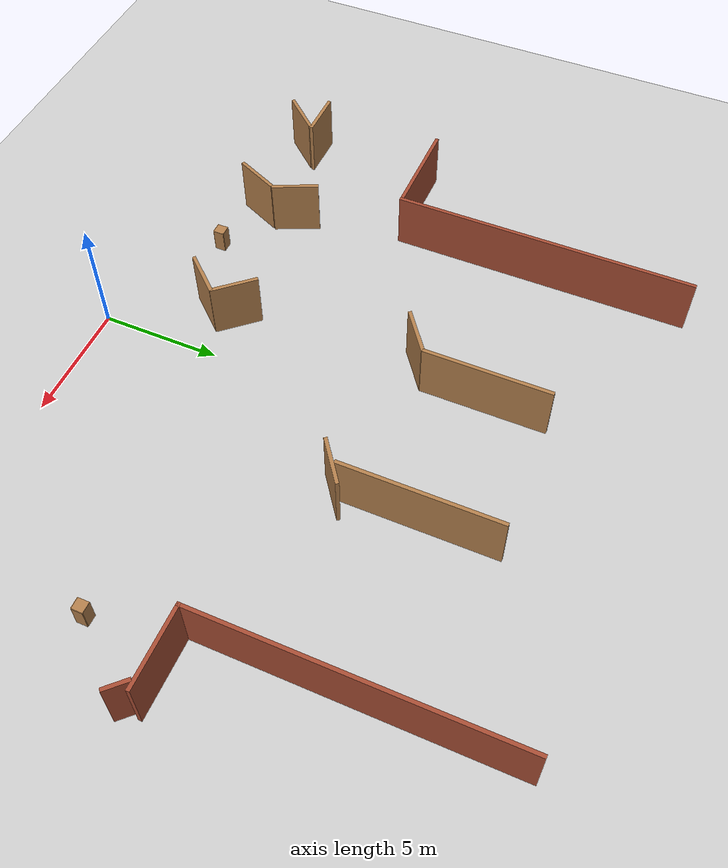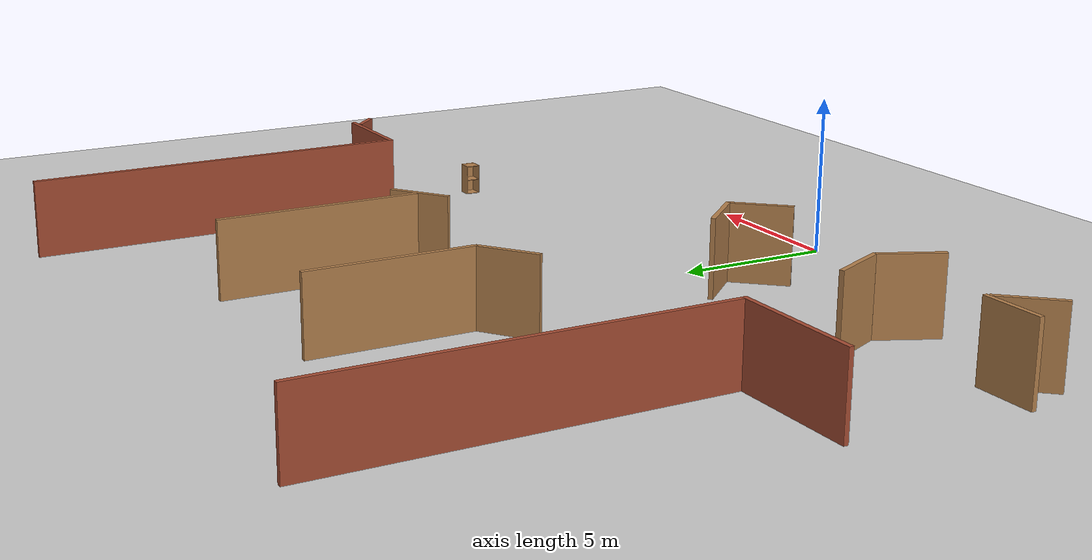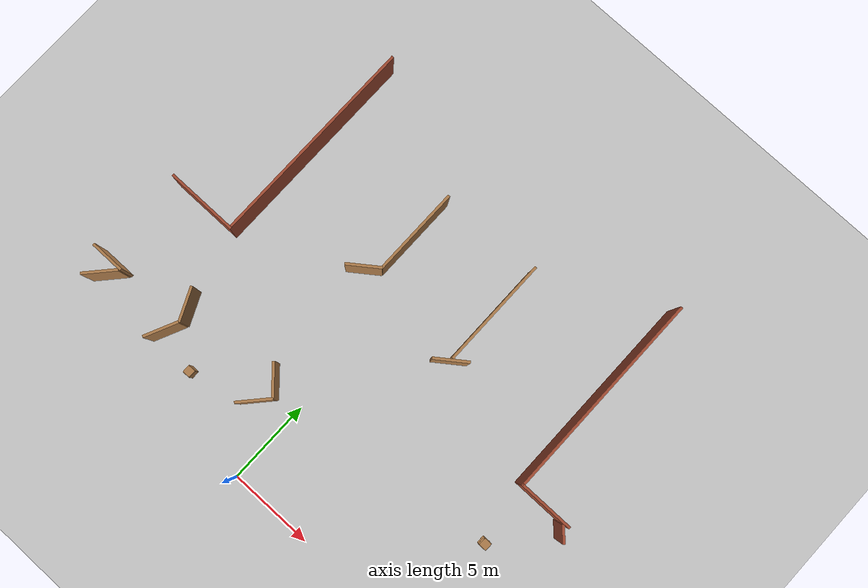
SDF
<sdf version="1.6">
 <world name="default">
  <model name="ground_plane">
   <static>1</static>
   <link name="link">
    <collision name="collision">
     <geometry><plane><normal>0 0 1</normal><size>100 100</size></plane></geometry>
     <surface><friction><ode><mu>100</mu><mu2>50</mu2></ode></friction></surface>
    </collision>
    <visual name="visual">
     <cast_shadows>0</cast_shadows>
     <geometry><plane><normal>0 0 1</normal><size>100 100</size></plane></geometry>
     <material>
      <script><uri>file://media/materials/scripts/gazebo.material</uri><name>Gazebo/Grey</name></script>
     </material>
    </visual>
   </link>
  </model>
  <model name="cabinet">
   <static>1</static>
   <link name="cabinet_bottom_plate">
    <inertial>
     <pose>0 0 -1 0 -0 0</pose>
     <inertia><ixx>2.05</ixx><ixy>0</ixy><ixz>0</ixz><iyy>2.05</iyy><iyz>0</iyz><izz>2.05</izz></inertia>
     <mass>25</mass>
    </inertial>
    <collision name="cabinet_bottom_plate_geom">
     <pose>0 0 0.01 0 -0 0</pose>
     <geometry><box><size>0.45 0.45 0.02</size></box></geometry>
    </collision>
    <visual name="cabinet_bottom_plate_geom_visual">
     <pose>0 0 0.01 0 -0 0</pose>
     <geometry><box><size>0.45 0.45 0.02</size></box></geometry>
     <material>
      <script><uri>file://media/materials/scripts/gazebo.material</uri><name>Gazebo/Wood</name></script>
     </material>
    </visual>
    <collision name="cabinet_bottom_plate_geom_cabinet_back_plate">
     <pose>0.235 0 0.51 0 -0 0</pose>
     <geometry><box><size>0.02 0.45 1.02</size></box></geometry>
    </collision>
    <visual name="cabinet_bottom_plate_geom_cabinet_back_plate_visual">
     <pose>0.235 0 0.51 0 -0 0</pose>
     <geometry><box><size>0.02 0.45 1.02</size></box></geometry>
     <material>
      <script><uri>file://media/materials/scripts/gazebo.material</uri><name>Gazebo/Wood</name></script>
     </material>
    </visual>
    <collision name="cabinet_bottom_plate_geom_cabinet_left_plate">
     <pose>0 0.235 0.51 0 -0 0</pose>
     <geometry><box><size>0.45 0.02 1.02</size></box></geometry>
    </collision>
    <visual name="cabinet_bottom_plate_geom_cabinet_left_plate_visual">
     <pose>0 0.235 0.51 0 -0 0</pose>
     <geometry><box><size>0.45 0.02 1.02</size></box></geometry>
     <material>
      <script><uri>file://media/materials/scripts/gazebo.material</uri><name>Gazebo/Wood</name></script>
     </material>
    </visual>
    <collision name="cabinet_bottom_plate_geom_cabinet_middle_plate">
     <pose>0 0 0.51 0 -0 0</pose>
     <geometry><box><size>0.45 0.45 0.02</size></box></geometry>
    </collision>
    <visual name="cabinet_bottom_plate_geom_cabinet_middle_plate_visual">
     <pose>0 0 0.51 0 -0 0</pose>
     <geometry><box><size>0.45 0.45 0.02</size></box></geometry>
     <material>
      <script><uri>file://media/materials/scripts/gazebo.material</uri><name>Gazebo/Wood</name></script>
     </material>
    </visual>
    <collision name="cabinet_bottom_plate_geom_cabinet_right_plate">
     <pose>0 -0.235 0.51 0 -0 0</pose>
     <geometry><box><size>0.45 0.02 1.02</size></box></geometry>
    </collision>
    <visual name="cabinet_bottom_plate_geom_cabinet_right_plate_visual">
     <pose>0 -0.235 0.51 0 -0 0</pose>
     <geometry><box><size>0.45 0.02 1.02</size></box></geometry>
     <material>
      <script><uri>file://media/materials/scripts/gazebo.material</uri><name>Gazebo/Wood</name></script>
     </material>
    </visual>
    <collision name="cabinet_bottom_plate_geom_cabinet_top_plate">
     <pose>0 0 1.01 0 -0 0</pose>
     <geometry><box><size>0.45 0.45 0.02</size></box></geometry>
    </collision>
    <visual name="cabinet_bottom_plate_geom_cabinet_top_plate_visual">
     <pose>0 0 1.01 0 -0 0</pose>
     <geometry><box><size>0.45 0.45 0.02</size></box></geometry>
     <material>
      <script><uri>file://media/materials/scripts/gazebo.material</uri><name>Gazebo/Wood</name></script>
     </material>
    </visual>
   </link>
   <pose>-5.64752 2.41185 0 0 -0 0</pose>
  </model>
  <model name="cabinet_2">
   <static>1</static>
   <link name="cabinet_bottom_plate">
    <inertial>
     <pose>0 0 -1 0 -0 0</pose>
     <inertia><ixx>2.05</ixx><ixy>0</ixy><ixz>0</ixz><iyy>2.05</iyy><iyz>0</iyz><izz>2.05</izz></inertia>
     <mass>25</mass>
    </inertial>
    <collision name="cabinet_bottom_plate_geom">
     <pose>0 0 0.01 0 -0 0</pose>
     <geometry><box><size>0.45 0.45 0.02</size></box></geometry>
    </collision>
    <visual name="cabinet_bottom_plate_geom_visual">
     <pose>0 0 0.01 0 -0 0</pose>
     <geometry><box><size>0.45 0.45 0.02</size></box></geometry>
     <material>
      <script><uri>file://media/materials/scripts/gazebo.material</uri><name>Gazebo/Wood</name></script>
     </material>
    </visual>
    <collision name="cabinet_bottom_plate_geom_cabinet_back_plate">
     <pose>0.235 0 0.51 0 -0 0</pose>
     <geometry><box><size>0.02 0.45 1.02</size></box></geometry>
    </collision>
    <visual name="cabinet_bottom_plate_geom_cabinet_back_plate_visual">
     <pose>0.235 0 0.51 0 -0 0</pose>
     <geometry><box><size>0.02 0.45 1.02</size></box></geometry>
     <material>
      <script><uri>file://media/materials/scripts/gazebo.material</uri><name>Gazebo/Wood</name></script>
     </material>
    </visual>
    <collision name="cabinet_bottom_plate_geom_cabinet_left_plate">
     <pose>0 0.235 0.51 0 -0 0</pose>
     <geometry><box><size>0.45 0.02 1.02</size></box></geometry>
    </collision>
    <visual name="cabinet_bottom_plate_geom_cabinet_left_plate_visual">
     <pose>0 0.235 0.51 0 -0 0</pose>
     <geometry><box><size>0.45 0.02 1.02</size></box></geometry>
     <material>
      <script><uri>file://media/materials/scripts/gazebo.material</uri><name>Gazebo/Wood</name></script>
     </material>
    </visual>
    <collision name="cabinet_bottom_plate_geom_cabinet_middle_plate">
     <pose>0 0 0.51 0 -0 0</pose>
     <geometry><box><size>0.45 0.45 0.02</size></box></geometry>
    </collision>
    <visual name="cabinet_bottom_plate_geom_cabinet_middle_plate_visual">
     <pose>0 0 0.51 0 -0 0</pose>
     <geometry><box><size>0.45 0.45 0.02</size></box></geometry>
     <material>
      <script><uri>file://media/materials/scripts/gazebo.material</uri><name>Gazebo/Wood</name></script>
     </material>
    </visual>
    <collision name="cabinet_bottom_plate_geom_cabinet_right_plate">
     <pose>0 -0.235 0.51 0 -0 0</pose>
     <geometry><box><size>0.45 0.02 1.02</size></box></geometry>
    </collision>
    <visual name="cabinet_bottom_plate_geom_cabinet_right_plate_visual">
     <pose>0 -0.235 0.51 0 -0 0</pose>
     <geometry><box><size>0.45 0.02 1.02</size></box></geometry>
     <material>
      <script><uri>file://media/materials/scripts/gazebo.material</uri><name>Gazebo/Wood</name></script>
     </material>
    </visual>
    <collision name="cabinet_bottom_plate_geom_cabinet_top_plate">
     <pose>0 0 1.01 0 -0 0</pose>
     <geometry><box><size>0.45 0.45 0.02</size></box></geometry>
    </collision>
    <visual name="cabinet_bottom_plate_geom_cabinet_top_plate_visual">
     <pose>0 0 1.01 0 -0 0</pose>
     <geometry><box><size>0.45 0.45 0.02</size></box></geometry>
     <material>
      <script><uri>file://media/materials/scripts/gazebo.material</uri><name>Gazebo/Wood</name></script>
     </material>
    </visual>
   </link>
   <pose>11.9831 6.41172 0 0 -0 0</pose>
  </model>
  <model name="test_maze">
   <link name="Wall_54">
    <pose>-12.0939 9.225 0 0 -0 0</pose>
    <visual name="Wall_54_Visual">
     <pose>0 0 1.25 0 -0 0</pose>
     <geometry><box><size>4.25 0.15 2.5</size></box></geometry>
     <material>
      <script><uri>file://media/materials/scripts/gazebo.material</uri><name>Gazebo/Bricks</name></script>
      <ambient>1 1 1 1</ambient>
      <shader type="pixel"/>
     </material>
     <meta><layer>0</layer></meta>
    </visual>
    <collision name="Wall_54_Collision">
     <pose>0 0 1.25 0 -0 0</pose>
     <geometry><box><size>4.25 0.15 2.5</size></box></geometry>
     <surface>
      <friction>
       <ode><mu>1</mu><mu2>1</mu2><fdir1>0 0 0</fdir1><slip1>0</slip1><slip2>0</slip2></ode>
       <torsional>
        <coefficient>1</coefficient>
        <patch_radius>0</patch_radius>
        <surface_radius>0</surface_radius>
        <use_patch_radius>1</use_patch_radius>
        <ode><slip>0</slip></ode>
       </torsional>
      </friction>
      <bounce><restitution_coefficient>0</restitution_coefficient><threshold>1e+06</threshold></bounce>
      <contact>
       <collide_without_contact>0</collide_without_contact>
       <collide_without_contact_bitmask>1</collide_without_contact_bitmask>
       <collide_bitmask>1</collide_bitmask>
       <ode>
        <soft_cfm>0</soft_cfm>
        <soft_erp>0.2</soft_erp>
        <kp>1e+13</kp>
        <kd>1</kd>
        <max_vel>0.01</max_vel>
        <min_depth>0</min_depth>
       </ode>
       <bullet>
        <split_impulse>1</split_impulse>
        <split_impulse_penetration_threshold>-0.01</split_impulse_penetration_threshold>
        <soft_cfm>0</soft_cfm>
        <soft_erp>0.2</soft_erp>
        <kp>1e+13</kp>
        <kd>1</kd>
       </bullet>
      </contact>
     </surface>
    </collision>
   </link>
   <link name="Wall_78">
    <pose>-10.0439 15.525 0 0 -0 1.5708</pose>
    <visual name="Wall_78_Visual">
     <pose>0 0 1.25 0 -0 0</pose>
     <geometry><box><size>12.75 0.15 2.5</size></box></geometry>
     <material>
      <script><uri>file://media/materials/scripts/gazebo.material</uri><name>Gazebo/Bricks</name></script>
      <ambient>1 1 1 1</ambient>
      <shader type="pixel"/>
     </material>
     <meta><layer>0</layer></meta>
    </visual>
    <collision name="Wall_78_Collision">
     <pose>0 0 1.25 0 -0 0</pose>
     <geometry><box><size>12.75 0.15 2.5</size></box></geometry>
     <surface>
      <friction>
       <ode><mu>1</mu><mu2>1</mu2><fdir1>0 0 0</fdir1><slip1>0</slip1><slip2>0</slip2></ode>
       <torsional>
        <coefficient>1</coefficient>
        <patch_radius>0</patch_radius>
        <surface_radius>0</surface_radius>
        <use_patch_radius>1</use_patch_radius>
        <ode><slip>0</slip></ode>
       </torsional>
      </friction>
      <bounce><restitution_coefficient>0</restitution_coefficient><threshold>1e+06</threshold></bounce>
      <contact>
       <collide_without_contact>0</collide_without_contact>
       <collide_without_contact_bitmask>1</collide_without_contact_bitmask>
       <collide_bitmask>1</collide_bitmask>
       <ode>
        <soft_cfm>0</soft_cfm>
        <soft_erp>0.2</soft_erp>
        <kp>1e+13</kp>
        <kd>1</kd>
        <max_vel>0.01</max_vel>
        <min_depth>0</min_depth>
       </ode>
       <bullet>
        <split_impulse>1</split_impulse>
        <split_impulse_penetration_threshold>-0.01</split_impulse_penetration_threshold>
        <soft_cfm>0</soft_cfm>
        <soft_erp>0.2</soft_erp>
        <kp>1e+13</kp>
        <kd>1</kd>
       </bullet>
      </contact>
     </surface>
    </collision>
   </link>
   <link name="Wall_88">
    <pose>10.2061 15.9 0 0 0 -1.5708</pose>
    <visual name="Wall_88_Visual">
     <pose>0 0 1.25 0 -0 0</pose>
     <geometry><box><size>12.5 0.15 2.5</size></box></geometry>
     <material>
      <script><uri>file://media/materials/scripts/gazebo.material</uri><name>Gazebo/Bricks</name></script>
      <ambient>1 1 1 1</ambient>
      <shader type="pixel"/>
     </material>
     <meta><layer>0</layer></meta>
    </visual>
    <collision name="Wall_88_Collision">
     <pose>0 0 1.25 0 -0 0</pose>
     <geometry><box><size>12.5 0.15 2.5</size></box></geometry>
     <surface>
      <friction>
       <ode><mu>1</mu><mu2>1</mu2><fdir1>0 0 0</fdir1><slip1>0</slip1><slip2>0</slip2></ode>
       <torsional>
        <coefficient>1</coefficient>
        <patch_radius>0</patch_radius>
        <surface_radius>0</surface_radius>
        <use_patch_radius>1</use_patch_radius>
        <ode><slip>0</slip></ode>
       </torsional>
      </friction>
      <bounce><restitution_coefficient>0</restitution_coefficient><threshold>1e+06</threshold></bounce>
      <contact>
       <collide_without_contact>0</collide_without_contact>
       <collide_without_contact_bitmask>1</collide_without_contact_bitmask>
       <collide_bitmask>1</collide_bitmask>
       <ode>
        <soft_cfm>0</soft_cfm>
        <soft_erp>0.2</soft_erp>
        <kp>1e+13</kp>
        <kd>1</kd>
        <max_vel>0.01</max_vel>
        <min_depth>0</min_depth>
       </ode>
       <bullet>
        <split_impulse>1</split_impulse>
        <split_impulse_penetration_threshold>-0.01</split_impulse_penetration_threshold>
        <soft_cfm>0</soft_cfm>
        <soft_erp>0.2</soft_erp>
        <kp>1e+13</kp>
        <kd>1</kd>
       </bullet>
      </contact>
     </surface>
    </collision>
   </link>
   <link name="Wall_89">
    <pose>11.7561 9.725 0 0 -0 0</pose>
    <visual name="Wall_89_Visual">
     <pose>0 0 1.25 0 -0 0</pose>
     <geometry><box><size>3.25 0.15 2.5</size></box></geometry>
     <material>
      <script><uri>file://media/materials/scripts/gazebo.material</uri><name>Gazebo/Bricks</name></script>
      <ambient>1 1 1 1</ambient>
      <shader type="pixel"/>
     </material>
     <meta><layer>0</layer></meta>
    </visual>
    <collision name="Wall_89_Collision">
     <pose>0 0 1.25 0 -0 0</pose>
     <geometry><box><size>3.25 0.15 2.5</size></box></geometry>
     <surface>
      <friction>
       <ode><mu>1</mu><mu2>1</mu2><fdir1>0 0 0</fdir1><slip1>0</slip1><slip2>0</slip2></ode>
       <torsional>
        <coefficient>1</coefficient>
        <patch_radius>0</patch_radius>
        <surface_radius>0</surface_radius>
        <use_patch_radius>1</use_patch_radius>
        <ode><slip>0</slip></ode>
       </torsional>
      </friction>
      <bounce><restitution_coefficient>0</restitution_coefficient><threshold>1e+06</threshold></bounce>
      <contact>
       <collide_without_contact>0</collide_without_contact>
       <collide_without_contact_bitmask>1</collide_without_contact_bitmask>
       <collide_bitmask>1</collide_bitmask>
       <ode>
        <soft_cfm>0</soft_cfm>
        <soft_erp>0.2</soft_erp>
        <kp>1e+13</kp>
        <kd>1</kd>
        <max_vel>0.01</max_vel>
        <min_depth>0</min_depth>
       </ode>
       <bullet>
        <split_impulse>1</split_impulse>
        <split_impulse_penetration_threshold>-0.01</split_impulse_penetration_threshold>
        <soft_cfm>0</soft_cfm>
        <soft_erp>0.2</soft_erp>
        <kp>1e+13</kp>
        <kd>1</kd>
       </bullet>
      </contact>
     </surface>
    </collision>
   </link>
   <link name="Wall_90_clone">
    <pose>13.3429 9.27752 0 0 0 -0.8</pose>
    <inertial>
     <mass>1</mass>
     <inertia><ixx>1</ixx><ixy>0</ixy><ixz>0</ixz><iyy>1</iyy><iyz>0</iyz><izz>1</izz></inertia>
    </inertial>
    <visual name="Wall_90_Visual">
     <pose>0 0 1.25 0 -0 0</pose>
     <geometry><box><size>1 0.15 2.5</size></box></geometry>
     <material>
      <script><uri>file://media/materials/scripts/gazebo.material</uri><name>Gazebo/Bricks</name></script>
      <ambient>1 1 1 1</ambient>
      <shader type="pixel"><normal_map>__default__</normal_map></shader>
      <diffuse>1 1 1 1</diffuse>
      <specular>0.2 0.2 0.2 1</specular>
      <emissive>0 0 0 1</emissive>
     </material>
     <meta><layer>0</layer></meta>
    </visual>
    <collision name="Wall_90_Collision">
     <pose>0 0 1.25 0 -0 0</pose>
     <geometry><box><size>1 0.15 2.5</size></box></geometry>
     <surface>
      <friction>
       <ode><mu>1</mu><mu2>1</mu2><fdir1>0 0 0</fdir1><slip1>0</slip1><slip2>0</slip2></ode>
       <torsional>
        <coefficient>1</coefficient>
        <patch_radius>0</patch_radius>
        <surface_radius>0</surface_radius>
        <use_patch_radius>1</use_patch_radius>
        <ode><slip>0</slip></ode>
       </torsional>
      </friction>
      <bounce><restitution_coefficient>0</restitution_coefficient><threshold>1e+06</threshold></bounce>
      <contact>
       <collide_without_contact>0</collide_without_contact>
       <collide_without_contact_bitmask>1</collide_without_contact_bitmask>
       <collide_bitmask>1</collide_bitmask>
       <ode>
        <soft_cfm>0</soft_cfm>
        <soft_erp>0.2</soft_erp>
        <kp>1e+13</kp>
        <kd>1</kd>
        <max_vel>0.01</max_vel>
        <min_depth>0</min_depth>
       </ode>
       <bullet>
        <split_impulse>1</split_impulse>
        <split_impulse_penetration_threshold>-0.01</split_impulse_penetration_threshold>
        <soft_cfm>0</soft_cfm>
        <soft_erp>0.2</soft_erp>
        <kp>1e+13</kp>
        <kd>1</kd>
       </bullet>
      </contact>
     </surface>
    </collision>
   </link>
   <link name="Wall_95">
    <pose>-2.70639 15.697 0 0 0 -1.5708</pose>
    <visual name="Wall_95_Visual">
     <pose>0 0 1.25 0 -0 0</pose>
     <geometry><box><size>5.25 0.15 2.5</size></box></geometry>
     <material>
      <script><uri>file://media/materials/scripts/gazebo.material</uri><name>Gazebo/Wood</name></script>
      <ambient>1 1 1 1</ambient>
      <shader type="pixel"/>
     </material>
     <meta><layer>0</layer></meta>
    </visual>
    <collision name="Wall_95_Collision">
     <pose>0 0 1.25 0 -0 0</pose>
     <geometry><box><size>5.25 0.15 2.5</size></box></geometry>
     <surface>
      <friction>
       <ode><mu>1</mu><mu2>1</mu2><fdir1>0 0 0</fdir1><slip1>0</slip1><slip2>0</slip2></ode>
       <torsional>
        <coefficient>1</coefficient>
        <patch_radius>0</patch_radius>
        <surface_radius>0</surface_radius>
        <use_patch_radius>1</use_patch_radius>
        <ode><slip>0</slip></ode>
       </torsional>
      </friction>
      <bounce><restitution_coefficient>0</restitution_coefficient><threshold>1e+06</threshold></bounce>
      <contact>
       <collide_without_contact>0</collide_without_contact>
       <collide_without_contact_bitmask>1</collide_without_contact_bitmask>
       <collide_bitmask>1</collide_bitmask>
       <ode>
        <soft_cfm>0</soft_cfm>
        <soft_erp>0.2</soft_erp>
        <kp>1e+13</kp>
        <kd>1</kd>
        <max_vel>0.01</max_vel>
        <min_depth>0</min_depth>
       </ode>
       <bullet>
        <split_impulse>1</split_impulse>
        <split_impulse_penetration_threshold>-0.01</split_impulse_penetration_threshold>
        <soft_cfm>0</soft_cfm>
        <soft_erp>0.2</soft_erp>
        <kp>1e+13</kp>
        <kd>1</kd>
       </bullet>
      </contact>
     </surface>
    </collision>
   </link>
   <link name="Wall_96_clone">
    <pose>3.21631 11.9618 0 0 0 -2.5063</pose>
    <visual name="Wall_96_Visual">
     <pose>0 0 1.25 0 -0 0</pose>
     <geometry><box><size>2.0055 0.15 2.5</size></box></geometry>
     <material>
      <script><uri>file://media/materials/scripts/gazebo.material</uri><name>Gazebo/Wood</name></script>
      <ambient>1 1 1 1</ambient>
      <shader type="pixel"/>
     </material>
     <meta><layer>0</layer></meta>
    </visual>
    <collision name="Wall_96_Collision">
     <pose>0 0 1.25 0 -0 0</pose>
     <geometry><box><size>2.0055 0.15 2.5</size></box></geometry>
     <surface>
      <friction>
       <ode><mu>1</mu><mu2>1</mu2><fdir1>0 0 0</fdir1><slip1>0</slip1><slip2>0</slip2></ode>
       <torsional>
        <coefficient>1</coefficient>
        <patch_radius>0</patch_radius>
        <surface_radius>0</surface_radius>
        <use_patch_radius>1</use_patch_radius>
        <ode><slip>0</slip></ode>
       </torsional>
      </friction>
      <bounce><restitution_coefficient>0</restitution_coefficient><threshold>1e+06</threshold></bounce>
      <contact>
       <collide_without_contact>0</collide_without_contact>
       <collide_without_contact_bitmask>1</collide_without_contact_bitmask>
       <collide_bitmask>1</collide_bitmask>
       <ode>
        <soft_cfm>0</soft_cfm>
        <soft_erp>0.2</soft_erp>
        <kp>1e+13</kp>
        <kd>1</kd>
        <max_vel>0.01</max_vel>
        <min_depth>0</min_depth>
       </ode>
       <bullet>
        <split_impulse>1</split_impulse>
        <split_impulse_penetration_threshold>-0.01</split_impulse_penetration_threshold>
        <soft_cfm>0</soft_cfm>
        <soft_erp>0.2</soft_erp>
        <kp>1e+13</kp>
        <kd>1</kd>
       </bullet>
      </contact>
     </surface>
    </collision>
   </link>
   <link name="Wall_96_clone_0_clone_clone_clone_clone_0_clone">
    <pose>-8.97742 2.89587 0 0 0 -2</pose>
    <inertial>
     <mass>1</mass>
     <inertia><ixx>1</ixx><ixy>0</ixy><ixz>0</ixz><iyy>1</iyy><iyz>0</iyz><izz>1</izz></inertia>
    </inertial>
    <visual name="Wall_96_Visual">
     <pose>0 0 1.25 0 -0 0</pose>
     <geometry><box><size>2.0055 0.15 2.5</size></box></geometry>
     <material>
      <script><uri>file://media/materials/scripts/gazebo.material</uri><name>Gazebo/Wood</name></script>
      <ambient>1 1 1 1</ambient>
      <shader type="pixel"><normal_map>__default__</normal_map></shader>
      <diffuse>1 1 1 1</diffuse>
      <specular>0.2 0.2 0.2 1</specular>
      <emissive>0 0 0 1</emissive>
     </material>
     <meta><layer>0</layer></meta>
    </visual>
    <collision name="Wall_96_Collision">
     <pose>0 0 1.25 0 -0 0</pose>
     <geometry><box><size>2.0055 0.15 2.5</size></box></geometry>
     <surface>
      <friction>
       <ode><mu>1</mu><mu2>1</mu2><fdir1>0 0 0</fdir1><slip1>0</slip1><slip2>0</slip2></ode>
       <torsional>
        <coefficient>1</coefficient>
        <patch_radius>0</patch_radius>
        <surface_radius>0</surface_radius>
        <use_patch_radius>1</use_patch_radius>
        <ode><slip>0</slip></ode>
       </torsional>
      </friction>
      <bounce><restitution_coefficient>0</restitution_coefficient><threshold>1e+06</threshold></bounce>
      <contact>
       <collide_without_contact>0</collide_without_contact>
       <collide_without_contact_bitmask>1</collide_without_contact_bitmask>
       <collide_bitmask>1</collide_bitmask>
       <ode>
        <soft_cfm>0</soft_cfm>
        <soft_erp>0.2</soft_erp>
        <kp>1e+13</kp>
        <kd>1</kd>
        <max_vel>0.01</max_vel>
        <min_depth>0</min_depth>
       </ode>
       <bullet>
        <split_impulse>1</split_impulse>
        <split_impulse_penetration_threshold>-0.01</split_impulse_penetration_threshold>
        <soft_cfm>0</soft_cfm>
        <soft_erp>0.2</soft_erp>
        <kp>1e+13</kp>
        <kd>1</kd>
       </bullet>
      </contact>
     </surface>
    </collision>
   </link>
   <link name="Wall_96_clone_0_clone_clone_clone_clone_clone_clone_clone_clone">
    <pose>-8.94532 4.71464 0 0 -0 2</pose>
    <inertial>
     <mass>1</mass>
     <inertia><ixx>1</ixx><ixy>0</ixy><ixz>0</ixz><iyy>1</iyy><iyz>0</iyz><izz>1</izz></inertia>
    </inertial>
    <visual name="Wall_96_Visual">
     <pose>0 0 1.25 0 -0 0</pose>
     <geometry><box><size>2.0055 0.15 2.5</size></box></geometry>
     <material>
      <script><uri>file://media/materials/scripts/gazebo.material</uri><name>Gazebo/Wood</name></script>
      <ambient>1 1 1 1</ambient>
      <shader type="pixel"><normal_map>__default__</normal_map></shader>
      <diffuse>1 1 1 1</diffuse>
      <specular>0.2 0.2 0.2 1</specular>
      <emissive>0 0 0 1</emissive>
     </material>
     <meta><layer>0</layer></meta>
    </visual>
    <collision name="Wall_96_Collision">
     <pose>0 0 1.25 0 -0 0</pose>
     <geometry><box><size>2.0055 0.15 2.5</size></box></geometry>
     <surface>
      <friction>
       <ode><mu>1</mu><mu2>1</mu2><fdir1>0 0 0</fdir1><slip1>0</slip1><slip2>0</slip2></ode>
       <torsional>
        <coefficient>1</coefficient>
        <patch_radius>0</patch_radius>
        <surface_radius>0</surface_radius>
        <use_patch_radius>1</use_patch_radius>
        <ode><slip>0</slip></ode>
       </torsional>
      </friction>
      <bounce><restitution_coefficient>0</restitution_coefficient><threshold>1e+06</threshold></bounce>
      <contact>
       <collide_without_contact>0</collide_without_contact>
       <collide_without_contact_bitmask>1</collide_without_contact_bitmask>
       <collide_bitmask>1</collide_bitmask>
       <ode>
        <soft_cfm>0</soft_cfm>
        <soft_erp>0.2</soft_erp>
        <kp>1e+13</kp>
        <kd>1</kd>
        <max_vel>0.01</max_vel>
        <min_depth>0</min_depth>
       </ode>
       <bullet>
        <split_impulse>1</split_impulse>
        <split_impulse_penetration_threshold>-0.01</split_impulse_penetration_threshold>
        <soft_cfm>0</soft_cfm>
        <soft_erp>0.2</soft_erp>
        <kp>1e+13</kp>
        <kd>1</kd>
       </bullet>
      </contact>
     </surface>
    </collision>
   </link>
   <link name="Wall_96_clone_1">
    <pose>-3.49567 12.506 0 0 0 -2.5063</pose>
    <visual name="Wall_96_Visual">
     <pose>0 0 1.25 0 -0 0</pose>
     <geometry><box><size>2.0055 0.15 2.5</size></box></geometry>
     <material>
      <script><uri>file://media/materials/scripts/gazebo.material</uri><name>Gazebo/Wood</name></script>
      <ambient>1 1 1 1</ambient>
      <shader type="pixel"/>
     </material>
     <meta><layer>0</layer></meta>
    </visual>
    <collision name="Wall_96_Collision">
     <pose>0 0 1.25 0 -0 0</pose>
     <geometry><box><size>2.0055 0.15 2.5</size></box></geometry>
     <surface>
      <friction>
       <ode><mu>1</mu><mu2>1</mu2><fdir1>0 0 0</fdir1><slip1>0</slip1><slip2>0</slip2></ode>
       <torsional>
        <coefficient>1</coefficient>
        <patch_radius>0</patch_radius>
        <surface_radius>0</surface_radius>
        <use_patch_radius>1</use_patch_radius>
        <ode><slip>0</slip></ode>
       </torsional>
      </friction>
      <bounce><restitution_coefficient>0</restitution_coefficient><threshold>1e+06</threshold></bounce>
      <contact>
       <collide_without_contact>0</collide_without_contact>
       <collide_without_contact_bitmask>1</collide_without_contact_bitmask>
       <collide_bitmask>1</collide_bitmask>
       <ode>
        <soft_cfm>0</soft_cfm>
        <soft_erp>0.2</soft_erp>
        <kp>1e+13</kp>
        <kd>1</kd>
        <max_vel>0.01</max_vel>
        <min_depth>0</min_depth>
       </ode>
       <bullet>
        <split_impulse>1</split_impulse>
        <split_impulse_penetration_threshold>-0.01</split_impulse_penetration_threshold>
        <soft_cfm>0</soft_cfm>
        <soft_erp>0.2</soft_erp>
        <kp>1e+13</kp>
        <kd>1</kd>
       </bullet>
      </contact>
     </surface>
    </collision>
   </link>
   <link name="Wall_96_clone_1_clone">
    <pose>-2.84843 4.93278 0 0 -0 2.3</pose>
    <inertial>
     <mass>1</mass>
     <inertia><ixx>1</ixx><ixy>0</ixy><ixz>0</ixz><iyy>1</iyy><iyz>0</iyz><izz>1</izz></inertia>
    </inertial>
    <visual name="Wall_96_Visual">
     <pose>0 0 1.25 0 -0 0</pose>
     <geometry><box><size>2.0055 0.15 2.5</size></box></geometry>
     <material>
      <script><uri>file://media/materials/scripts/gazebo.material</uri><name>Gazebo/Wood</name></script>
      <ambient>1 1 1 1</ambient>
      <shader type="pixel"><normal_map>__default__</normal_map></shader>
      <diffuse>1 1 1 1</diffuse>
      <specular>0.2 0.2 0.2 1</specular>
      <emissive>0 0 0 1</emissive>
     </material>
     <meta><layer>0</layer></meta>
    </visual>
    <collision name="Wall_96_Collision">
     <pose>0 0 1.25 0 -0 0</pose>
     <geometry><box><size>2.0055 0.15 2.5</size></box></geometry>
     <surface>
      <friction>
       <ode><mu>1</mu><mu2>1</mu2><fdir1>0 0 0</fdir1><slip1>0</slip1><slip2>0</slip2></ode>
       <torsional>
        <coefficient>1</coefficient>
        <patch_radius>0</patch_radius>
        <surface_radius>0</surface_radius>
        <use_patch_radius>1</use_patch_radius>
        <ode><slip>0</slip></ode>
       </torsional>
      </friction>
      <bounce><restitution_coefficient>0</restitution_coefficient><threshold>1e+06</threshold></bounce>
      <contact>
       <collide_without_contact>0</collide_without_contact>
       <collide_without_contact_bitmask>1</collide_without_contact_bitmask>
       <collide_bitmask>1</collide_bitmask>
       <ode>
        <soft_cfm>0</soft_cfm>
        <soft_erp>0.2</soft_erp>
        <kp>1e+13</kp>
        <kd>1</kd>
        <max_vel>0.01</max_vel>
        <min_depth>0</min_depth>
       </ode>
       <bullet>
        <split_impulse>1</split_impulse>
        <split_impulse_penetration_threshold>-0.01</split_impulse_penetration_threshold>
        <soft_cfm>0</soft_cfm>
        <soft_erp>0.2</soft_erp>
        <kp>1e+13</kp>
        <kd>1</kd>
       </bullet>
      </contact>
     </surface>
    </collision>
   </link>
   <link name="Wall_96_clone_1_clone_1_clone">
    <pose>-2.87913 3.50013 0 0 0 -2.3</pose>
    <inertial>
     <mass>1</mass>
     <inertia><ixx>1</ixx><ixy>0</ixy><ixz>0</ixz><iyy>1</iyy><iyz>0</iyz><izz>1</izz></inertia>
    </inertial>
    <visual name="Wall_96_Visual">
     <pose>0 0 1.25 0 -0 0</pose>
     <geometry><box><size>2.0055 0.15 2.5</size></box></geometry>
     <material>
      <script><uri>file://media/materials/scripts/gazebo.material</uri><name>Gazebo/Wood</name></script>
      <ambient>1 1 1 1</ambient>
      <shader type="pixel"><normal_map>__default__</normal_map></shader>
      <diffuse>1 1 1 1</diffuse>
      <specular>0.2 0.2 0.2 1</specular>
      <emissive>0 0 0 1</emissive>
     </material>
     <meta><layer>0</layer></meta>
    </visual>
    <collision name="Wall_96_Collision">
     <pose>0 0 1.25 0 -0 0</pose>
     <geometry><box><size>2.0055 0.15 2.5</size></box></geometry>
     <surface>
      <friction>
       <ode><mu>1</mu><mu2>1</mu2><fdir1>0 0 0</fdir1><slip1>0</slip1><slip2>0</slip2></ode>
       <torsional>
        <coefficient>1</coefficient>
        <patch_radius>0</patch_radius>
        <surface_radius>0</surface_radius>
        <use_patch_radius>1</use_patch_radius>
        <ode><slip>0</slip></ode>
       </torsional>
      </friction>
      <bounce><restitution_coefficient>0</restitution_coefficient><threshold>1e+06</threshold></bounce>
      <contact>
       <collide_without_contact>0</collide_without_contact>
       <collide_without_contact_bitmask>1</collide_without_contact_bitmask>
       <collide_bitmask>1</collide_bitmask>
       <ode>
        <soft_cfm>0</soft_cfm>
        <soft_erp>0.2</soft_erp>
        <kp>1e+13</kp>
        <kd>1</kd>
        <max_vel>0.01</max_vel>
        <min_depth>0</min_depth>
       </ode>
       <bullet>
        <split_impulse>1</split_impulse>
        <split_impulse_penetration_threshold>-0.01</split_impulse_penetration_threshold>
        <soft_cfm>0</soft_cfm>
        <soft_erp>0.2</soft_erp>
        <kp>1e+13</kp>
        <kd>1</kd>
       </bullet>
      </contact>
     </surface>
    </collision>
   </link>
   <link name="Wall_96_clone_1_clone_1_clone_clone_0">
    <pose>-13.4507 2.89487 0 0 0 -2.3</pose>
    <inertial>
     <mass>1</mass>
     <inertia><ixx>1</ixx><ixy>0</ixy><ixz>0</ixz><iyy>1</iyy><iyz>0</iyz><izz>1</izz></inertia>
    </inertial>
    <visual name="Wall_96_Visual">
     <pose>0 0 1.25 0 -0 0</pose>
     <geometry><box><size>2.0055 0.15 2.5</size></box></geometry>
     <material>
      <script><uri>file://media/materials/scripts/gazebo.material</uri><name>Gazebo/Wood</name></script>
      <ambient>1 1 1 1</ambient>
      <shader type="pixel"><normal_map>__default__</normal_map></shader>
      <diffuse>1 1 1 1</diffuse>
      <specular>0.2 0.2 0.2 1</specular>
      <emissive>0 0 0 1</emissive>
     </material>
     <meta><layer>0</layer></meta>
    </visual>
    <collision name="Wall_96_Collision">
     <pose>0 0 1.25 0 -0 0</pose>
     <geometry><box><size>2.0055 0.15 2.5</size></box></geometry>
     <surface>
      <friction>
       <ode><mu>1</mu><mu2>1</mu2><fdir1>0 0 0</fdir1><slip1>0</slip1><slip2>0</slip2></ode>
       <torsional>
        <coefficient>1</coefficient>
        <patch_radius>0</patch_radius>
        <surface_radius>0</surface_radius>
        <use_patch_radius>1</use_patch_radius>
        <ode><slip>0</slip></ode>
       </torsional>
      </friction>
      <bounce><restitution_coefficient>0</restitution_coefficient><threshold>1e+06</threshold></bounce>
      <contact>
       <collide_without_contact>0</collide_without_contact>
       <collide_without_contact_bitmask>1</collide_without_contact_bitmask>
       <collide_bitmask>1</collide_bitmask>
       <ode>
        <soft_cfm>0</soft_cfm>
        <soft_erp>0.2</soft_erp>
        <kp>1e+13</kp>
        <kd>1</kd>
        <max_vel>0.01</max_vel>
        <min_depth>0</min_depth>
       </ode>
       <bullet>
        <split_impulse>1</split_impulse>
        <split_impulse_penetration_threshold>-0.01</split_impulse_penetration_threshold>
        <soft_cfm>0</soft_cfm>
        <soft_erp>0.2</soft_erp>
        <kp>1e+13</kp>
        <kd>1</kd>
       </bullet>
      </contact>
     </surface>
    </collision>
   </link>
   <link name="Wall_96_clone_1_clone_clone_0_clone_clone_clone">
    <pose>-13.6957 3.72724 0 0 -0 0</pose>
    <inertial>
     <mass>1</mass>
     <inertia><ixx>1</ixx><ixy>0</ixy><ixz>0</ixz><iyy>1</iyy><iyz>0</iyz><izz>1</izz></inertia>
    </inertial>
    <visual name="Wall_96_Visual">
     <pose>0 0 1.25 0 -0 0</pose>
     <geometry><box><size>2.0055 0.15 2.5</size></box></geometry>
     <material>
      <script><uri>file://media/materials/scripts/gazebo.material</uri><name>Gazebo/Wood</name></script>
      <ambient>1 1 1 1</ambient>
      <shader type="pixel"><normal_map>__default__</normal_map></shader>
      <diffuse>1 1 1 1</diffuse>
      <specular>0.2 0.2 0.2 1</specular>
      <emissive>0 0 0 1</emissive>
     </material>
     <meta><layer>0</layer></meta>
    </visual>
    <collision name="Wall_96_Collision">
     <pose>0 0 1.25 0 -0 0</pose>
     <geometry><box><size>2.0055 0.15 2.5</size></box></geometry>
     <surface>
      <friction>
       <ode><mu>1</mu><mu2>1</mu2><fdir1>0 0 0</fdir1><slip1>0</slip1><slip2>0</slip2></ode>
       <torsional>
        <coefficient>1</coefficient>
        <patch_radius>0</patch_radius>
        <surface_radius>0</surface_radius>
        <use_patch_radius>1</use_patch_radius>
        <ode><slip>0</slip></ode>
       </torsional>
      </friction>
      <bounce><restitution_coefficient>0</restitution_coefficient><threshold>1e+06</threshold></bounce>
      <contact>
       <collide_without_contact>0</collide_without_contact>
       <collide_without_contact_bitmask>1</collide_without_contact_bitmask>
       <collide_bitmask>1</collide_bitmask>
       <ode>
        <soft_cfm>0</soft_cfm>
        <soft_erp>0.2</soft_erp>
        <kp>1e+13</kp>
        <kd>1</kd>
        <max_vel>0.01</max_vel>
        <min_depth>0</min_depth>
       </ode>
       <bullet>
        <split_impulse>1</split_impulse>
        <split_impulse_penetration_threshold>-0.01</split_impulse_penetration_threshold>
        <soft_cfm>0</soft_cfm>
        <soft_erp>0.2</soft_erp>
        <kp>1e+13</kp>
        <kd>1</kd>
       </bullet>
      </contact>
     </surface>
    </collision>
   </link>
   <link name="Wall_99">
    <pose>3.20533 15.3209 0 0 0 -1.5708</pose>
    <visual name="Wall_99_Visual">
     <pose>0 0 1.25 0 -0 0</pose>
     <geometry><box><size>6.5 0.15 2.5</size></box></geometry>
     <material>
      <script><uri>file://media/materials/scripts/gazebo.material</uri><name>Gazebo/Wood</name></script>
      <ambient>1 1 1 1</ambient>
      <shader type="pixel"/>
     </material>
     <meta><layer>0</layer></meta>
    </visual>
    <collision name="Wall_99_Collision">
     <pose>0 0 1.25 0 -0 0</pose>
     <geometry><box><size>6.5 0.15 2.5</size></box></geometry>
     <surface>
      <friction>
       <ode><mu>1</mu><mu2>1</mu2><fdir1>0 0 0</fdir1><slip1>0</slip1><slip2>0</slip2></ode>
       <torsional>
        <coefficient>1</coefficient>
        <patch_radius>0</patch_radius>
        <surface_radius>0</surface_radius>
        <use_patch_radius>1</use_patch_radius>
        <ode><slip>0</slip></ode>
       </torsional>
      </friction>
      <bounce><restitution_coefficient>0</restitution_coefficient><threshold>1e+06</threshold></bounce>
      <contact>
       <collide_without_contact>0</collide_without_contact>
       <collide_without_contact_bitmask>1</collide_without_contact_bitmask>
       <collide_bitmask>1</collide_bitmask>
       <ode>
        <soft_cfm>0</soft_cfm>
        <soft_erp>0.2</soft_erp>
        <kp>1e+13</kp>
        <kd>1</kd>
        <max_vel>0.01</max_vel>
        <min_depth>0</min_depth>
       </ode>
       <bullet>
        <split_impulse>1</split_impulse>
        <split_impulse_penetration_threshold>-0.01</split_impulse_penetration_threshold>
        <soft_cfm>0</soft_cfm>
        <soft_erp>0.2</soft_erp>
        <kp>1e+13</kp>
        <kd>1</kd>
       </bullet>
      </contact>
     </surface>
    </collision>
   </link>
   <static>1</static>
   <pose>0.982774 0.2292 0 0 -0 0</pose>
  </model>
 </world>
</sdf>
